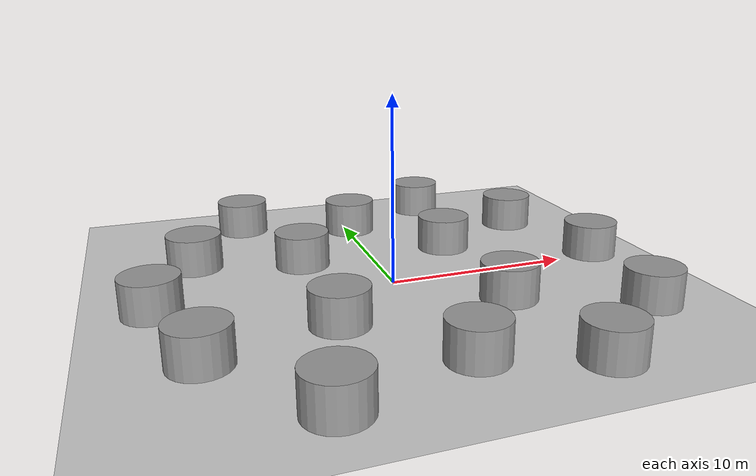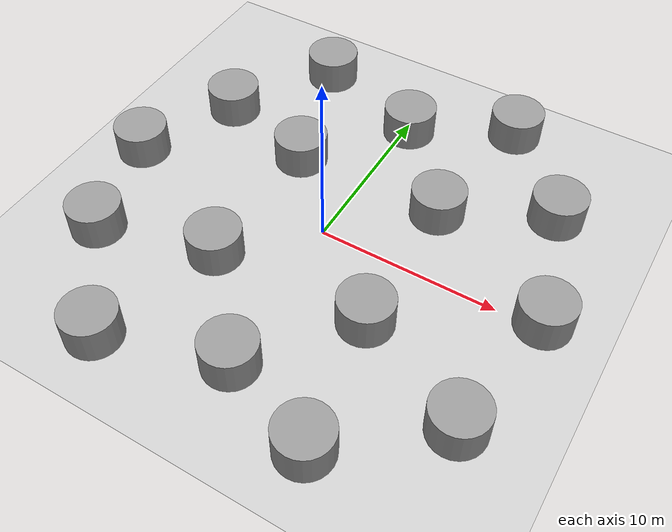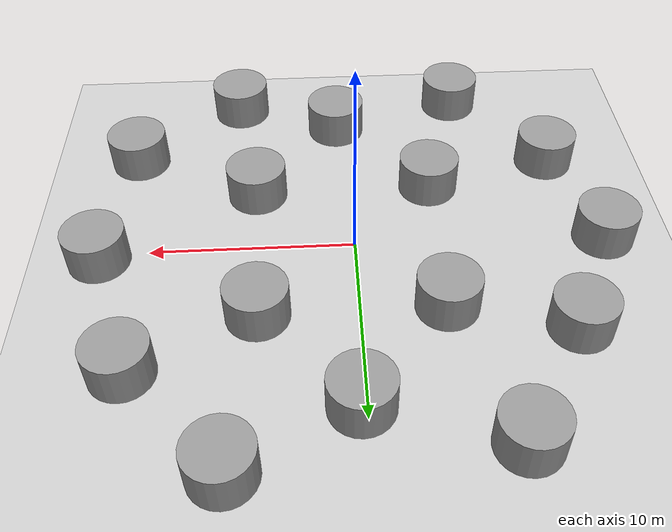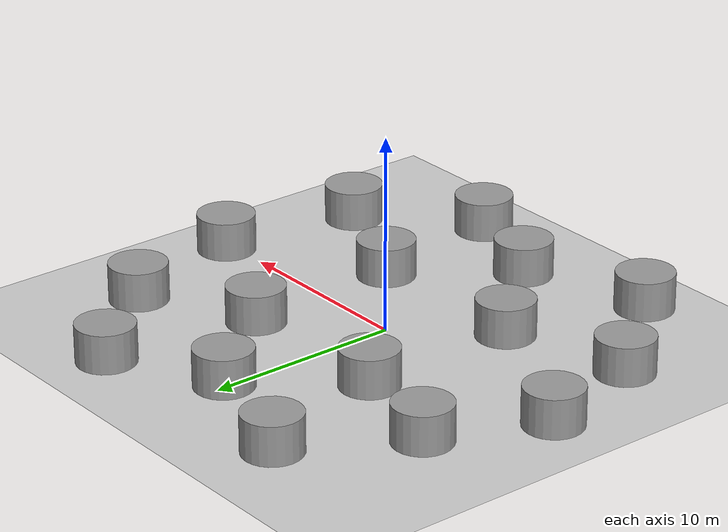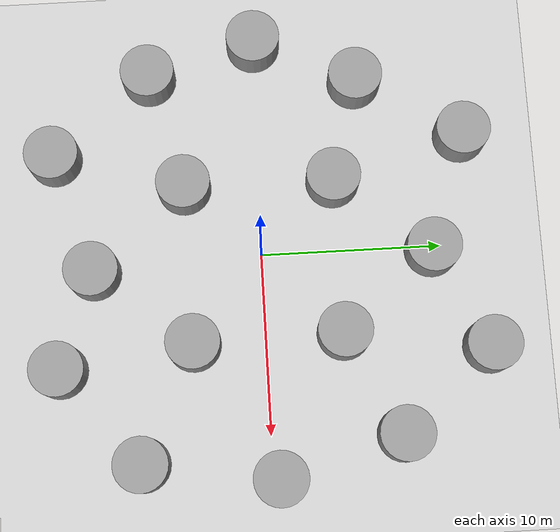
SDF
<sdf version="1.6">
 <world name="default">
  <light name="sun" type="directional">
   <pose>0 0 10 0 -0 0</pose>
   <diffuse>0.8 0.8 0.8 1</diffuse>
   <specular>0 0 0.2 1</specular>
   <attenuation>
    <range>1000</range>
    <constant>0.9</constant>
    <linear>0.01</linear>
    <quadratic>0.001</quadratic>
   </attenuation>
   <direction>-0.5 0.1 -0.9</direction>
  </light>
  <model name="ground_plane">
   <static>1</static>
   <link name="link">
    <collision name="collision">
     <geometry><plane><normal>0 0 1</normal><size>100 100</size></plane></geometry>
     <surface>
      <contact><collide_bitmask>65535</collide_bitmask></contact>
      <friction><ode><mu>100</mu><mu2>50</mu2></ode></friction>
     </surface>
    </collision>
    <visual name="visual">
     <cast_shadows>0</cast_shadows>
     <geometry><plane><normal>0 0 1</normal><size>100 100</size></plane></geometry>
     <material>
      <script><uri>file://media/materials/scripts/gazebo.material</uri><name>Gazebo/Grey</name></script>
     </material>
    </visual>
   </link>
  </model>
  <gravity>0 0 -9.8</gravity>
  <magnetic_field>6e-06 2.3e-05 -4.2e-05</magnetic_field>
  <atmosphere type="adiabatic"/>
  <physics name="default_physics" default="0" type="ode">
   <max_step_size>0.001</max_step_size>
   <real_time_factor>1</real_time_factor>
   <real_time_update_rate>1000</real_time_update_rate>
   <ode>
    <solver>
     <iters>1000</iters>
     <type>quick</type>
     <sor>1.3</sor>
     <use_dynamic_moi_rescaling>0</use_dynamic_moi_rescaling>
    </solver>
    <constraints>
     <cfm>0</cfm>
     <erp>0.2</erp>
     <contact_max_correcting_vel>100</contact_max_correcting_vel>
     <contact_surface_layer>0.001</contact_surface_layer>
    </constraints>
   </ode>
  </physics>
  <scene><ambient>0.4 0.4 0.4 1</ambient><background>0.7 0.7 0.7 1</background><shadows>1</shadows></scene>
  <audio><device>default</device></audio>
  <spherical_coordinates>
   <surface_model>EARTH_WGS84</surface_model>
   <latitude_deg>0</latitude_deg>
   <longitude_deg>0</longitude_deg>
   <elevation>0</elevation>
   <heading_deg>0</heading_deg>
  </spherical_coordinates>
  <model name="Cylinder_tree_5">
   <link name="link_0">
    <inertial>
     <mass>100</mass>
     <inertia><ixx>89.5833</ixx><ixy>0</ixy><ixz>0</ixz><iyy>89.5833</iyy><iyz>0</iyz><izz>112.5</izz></inertia>
    </inertial>
    <visual name="visual">
     <pose>0 0 0.5 0 -0 0</pose>
     <geometry><cylinder><radius>1.5</radius><length>2</length></cylinder></geometry>
     <material>
      <lighting>1</lighting>
      <script><uri>file://media/materials/scripts/gazebo.material</uri><name>Gazebo/Grey</name></script>
      <shader type="vertex"><normal_map>__default__</normal_map></shader>
      <ambient>0.3 0.3 0.3 1</ambient>
      <diffuse>0.7 0.7 0.7 1</diffuse>
      <specular>0.01 0.01 0.01 1</specular>
      <emissive>0 0 0 1</emissive>
     </material>
    </visual>
    <collision name="collision">
     <pose>0 0 0.5 0 -0 0</pose>
     <geometry><cylinder><radius>1.5</radius><length>2</length></cylinder></geometry>
     <surface>
      <friction>
       <ode><mu>1</mu><mu2>1</mu2><fdir1>0 0 0</fdir1><slip1>0</slip1><slip2>0</slip2></ode>
       <torsional>
        <coefficient>1</coefficient>
        <patch_radius>0</patch_radius>
        <surface_radius>0</surface_radius>
        <use_patch_radius>1</use_patch_radius>
        <ode><slip>0</slip></ode>
       </torsional>
      </friction>
      <bounce><restitution_coefficient>0</restitution_coefficient><threshold>1e+06</threshold></bounce>
      <contact>
       <collide_without_contact>0</collide_without_contact>
       <collide_without_contact_bitmask>1</collide_without_contact_bitmask>
       <collide_bitmask>1</collide_bitmask>
       <ode>
        <soft_cfm>0</soft_cfm>
        <soft_erp>0.2</soft_erp>
        <kp>1e+13</kp>
        <kd>1</kd>
        <max_vel>0.01</max_vel>
        <min_depth>0</min_depth>
       </ode>
       <bullet>
        <split_impulse>1</split_impulse>
        <split_impulse_penetration_threshold>-0.01</split_impulse_penetration_threshold>
        <soft_cfm>0</soft_cfm>
        <soft_erp>0.2</soft_erp>
        <kp>1e+13</kp>
        <kd>1</kd>
       </bullet>
      </contact>
     </surface>
    </collision>
   </link>
   <static>1</static>
   <pose>4.63336 4.28712 0.5 3e-06 -0 0</pose>
  </model>
  <model name="Cylinder_tree_6">
   <link name="link_0">
    <inertial>
     <mass>100</mass>
     <inertia><ixx>89.5833</ixx><ixy>0</ixy><ixz>0</ixz><iyy>89.5833</iyy><iyz>0</iyz><izz>112.5</izz></inertia>
    </inertial>
    <visual name="visual">
     <pose>0 0 0.5 0 -0 0</pose>
     <geometry><cylinder><radius>1.5</radius><length>2</length></cylinder></geometry>
     <material>
      <lighting>1</lighting>
      <script><uri>file://media/materials/scripts/gazebo.material</uri><name>Gazebo/Grey</name></script>
      <shader type="vertex"><normal_map>__default__</normal_map></shader>
      <ambient>0.3 0.3 0.3 1</ambient>
      <diffuse>0.7 0.7 0.7 1</diffuse>
      <specular>0.01 0.01 0.01 1</specular>
      <emissive>0 0 0 1</emissive>
     </material>
    </visual>
    <collision name="collision">
     <pose>0 0 0.5 0 -0 0</pose>
     <geometry><cylinder><radius>1.5</radius><length>2</length></cylinder></geometry>
     <surface>
      <friction>
       <ode><mu>1</mu><mu2>1</mu2><fdir1>0 0 0</fdir1><slip1>0</slip1><slip2>0</slip2></ode>
       <torsional>
        <coefficient>1</coefficient>
        <patch_radius>0</patch_radius>
        <surface_radius>0</surface_radius>
        <use_patch_radius>1</use_patch_radius>
        <ode><slip>0</slip></ode>
       </torsional>
      </friction>
      <bounce><restitution_coefficient>0</restitution_coefficient><threshold>1e+06</threshold></bounce>
      <contact>
       <collide_without_contact>0</collide_without_contact>
       <collide_without_contact_bitmask>1</collide_without_contact_bitmask>
       <collide_bitmask>1</collide_bitmask>
       <ode>
        <soft_cfm>0</soft_cfm>
        <soft_erp>0.2</soft_erp>
        <kp>1e+13</kp>
        <kd>1</kd>
        <max_vel>0.01</max_vel>
        <min_depth>0</min_depth>
       </ode>
       <bullet>
        <split_impulse>1</split_impulse>
        <split_impulse_penetration_threshold>-0.01</split_impulse_penetration_threshold>
        <soft_cfm>0</soft_cfm>
        <soft_erp>0.2</soft_erp>
        <kp>1e+13</kp>
        <kd>1</kd>
       </bullet>
      </contact>
     </surface>
    </collision>
   </link>
   <static>1</static>
   <pose>10.3143 7.20695 0.5 3e-06 -0 0</pose>
  </model>
  <model name="Cylinder_tree_7">
   <link name="link_0">
    <inertial>
     <mass>100</mass>
     <inertia><ixx>89.5833</ixx><ixy>0</ixy><ixz>0</ixz><iyy>89.5833</iyy><iyz>0</iyz><izz>112.5</izz></inertia>
    </inertial>
    <visual name="visual">
     <pose>0 0 0.5 0 -0 0</pose>
     <geometry><cylinder><radius>1.5</radius><length>2</length></cylinder></geometry>
     <material>
      <lighting>1</lighting>
      <script><uri>file://media/materials/scripts/gazebo.material</uri><name>Gazebo/Grey</name></script>
      <shader type="vertex"><normal_map>__default__</normal_map></shader>
      <ambient>0.3 0.3 0.3 1</ambient>
      <diffuse>0.7 0.7 0.7 1</diffuse>
      <specular>0.01 0.01 0.01 1</specular>
      <emissive>0 0 0 1</emissive>
     </material>
    </visual>
    <collision name="collision">
     <pose>0 0 0.5 0 -0 0</pose>
     <geometry><cylinder><radius>1.5</radius><length>2</length></cylinder></geometry>
     <surface>
      <friction>
       <ode><mu>1</mu><mu2>1</mu2><fdir1>0 0 0</fdir1><slip1>0</slip1><slip2>0</slip2></ode>
       <torsional>
        <coefficient>1</coefficient>
        <patch_radius>0</patch_radius>
        <surface_radius>0</surface_radius>
        <use_patch_radius>1</use_patch_radius>
        <ode><slip>0</slip></ode>
       </torsional>
      </friction>
      <bounce><restitution_coefficient>0</restitution_coefficient><threshold>1e+06</threshold></bounce>
      <contact>
       <collide_without_contact>0</collide_without_contact>
       <collide_without_contact_bitmask>1</collide_without_contact_bitmask>
       <collide_bitmask>1</collide_bitmask>
       <ode>
        <soft_cfm>0</soft_cfm>
        <soft_erp>0.2</soft_erp>
        <kp>1e+13</kp>
        <kd>1</kd>
        <max_vel>0.01</max_vel>
        <min_depth>0</min_depth>
       </ode>
       <bullet>
        <split_impulse>1</split_impulse>
        <split_impulse_penetration_threshold>-0.01</split_impulse_penetration_threshold>
        <soft_cfm>0</soft_cfm>
        <soft_erp>0.2</soft_erp>
        <kp>1e+13</kp>
        <kd>1</kd>
       </bullet>
      </contact>
     </surface>
    </collision>
   </link>
   <static>1</static>
   <pose>12.3241 0.388519 0.5 3e-06 -0 0</pose>
  </model>
  <model name="Cylinder_tree_8">
   <link name="link_0">
    <inertial>
     <mass>100</mass>
     <inertia><ixx>89.5833</ixx><ixy>0</ixy><ixz>0</ixz><iyy>89.5833</iyy><iyz>0</iyz><izz>112.5</izz></inertia>
    </inertial>
    <visual name="visual">
     <pose>0 0 0.5 0 -0 0</pose>
     <geometry><cylinder><radius>1.5</radius><length>2</length></cylinder></geometry>
     <material>
      <lighting>1</lighting>
      <script><uri>file://media/materials/scripts/gazebo.material</uri><name>Gazebo/Grey</name></script>
      <shader type="vertex"><normal_map>__default__</normal_map></shader>
      <ambient>0.3 0.3 0.3 1</ambient>
      <diffuse>0.7 0.7 0.7 1</diffuse>
      <specular>0.01 0.01 0.01 1</specular>
      <emissive>0 0 0 1</emissive>
     </material>
    </visual>
    <collision name="collision">
     <pose>0 0 0.5 0 -0 0</pose>
     <geometry><cylinder><radius>1.5</radius><length>2</length></cylinder></geometry>
     <surface>
      <friction>
       <ode><mu>1</mu><mu2>1</mu2><fdir1>0 0 0</fdir1><slip1>0</slip1><slip2>0</slip2></ode>
       <torsional>
        <coefficient>1</coefficient>
        <patch_radius>0</patch_radius>
        <surface_radius>0</surface_radius>
        <use_patch_radius>1</use_patch_radius>
        <ode><slip>0</slip></ode>
       </torsional>
      </friction>
      <bounce><restitution_coefficient>0</restitution_coefficient><threshold>1e+06</threshold></bounce>
      <contact>
       <collide_without_contact>0</collide_without_contact>
       <collide_without_contact_bitmask>1</collide_without_contact_bitmask>
       <collide_bitmask>1</collide_bitmask>
       <ode>
        <soft_cfm>0</soft_cfm>
        <soft_erp>0.2</soft_erp>
        <kp>1e+13</kp>
        <kd>1</kd>
        <max_vel>0.01</max_vel>
        <min_depth>0</min_depth>
       </ode>
       <bullet>
        <split_impulse>1</split_impulse>
        <split_impulse_penetration_threshold>-0.01</split_impulse_penetration_threshold>
        <soft_cfm>0</soft_cfm>
        <soft_erp>0.2</soft_erp>
        <kp>1e+13</kp>
        <kd>1</kd>
       </bullet>
      </contact>
     </surface>
    </collision>
   </link>
   <static>1</static>
   <pose>4.82698 -3.95706 0.5 0 -0 0</pose>
  </model>
  <model name="Cylinder_tree_9">
   <link name="link_0">
    <inertial>
     <mass>100</mass>
     <inertia><ixx>89.5833</ixx><ixy>0</ixy><ixz>0</ixz><iyy>89.5833</iyy><iyz>0</iyz><izz>112.5</izz></inertia>
    </inertial>
    <visual name="visual">
     <pose>0 0 0.5 0 -0 0</pose>
     <geometry><cylinder><radius>1.5</radius><length>2</length></cylinder></geometry>
     <material>
      <lighting>1</lighting>
      <script><uri>file://media/materials/scripts/gazebo.material</uri><name>Gazebo/Grey</name></script>
      <shader type="vertex"><normal_map>__default__</normal_map></shader>
      <ambient>0.3 0.3 0.3 1</ambient>
      <diffuse>0.7 0.7 0.7 1</diffuse>
      <specular>0.01 0.01 0.01 1</specular>
      <emissive>0 0 0 1</emissive>
     </material>
    </visual>
    <collision name="collision">
     <pose>0 0 0.5 0 -0 0</pose>
     <geometry><cylinder><radius>1.5</radius><length>2</length></cylinder></geometry>
     <surface>
      <friction>
       <ode><mu>1</mu><mu2>1</mu2><fdir1>0 0 0</fdir1><slip1>0</slip1><slip2>0</slip2></ode>
       <torsional>
        <coefficient>1</coefficient>
        <patch_radius>0</patch_radius>
        <surface_radius>0</surface_radius>
        <use_patch_radius>1</use_patch_radius>
        <ode><slip>0</slip></ode>
       </torsional>
      </friction>
      <bounce><restitution_coefficient>0</restitution_coefficient><threshold>1e+06</threshold></bounce>
      <contact>
       <collide_without_contact>0</collide_without_contact>
       <collide_without_contact_bitmask>1</collide_without_contact_bitmask>
       <collide_bitmask>1</collide_bitmask>
       <ode>
        <soft_cfm>0</soft_cfm>
        <soft_erp>0.2</soft_erp>
        <kp>1e+13</kp>
        <kd>1</kd>
        <max_vel>0.01</max_vel>
        <min_depth>0</min_depth>
       </ode>
       <bullet>
        <split_impulse>1</split_impulse>
        <split_impulse_penetration_threshold>-0.01</split_impulse_penetration_threshold>
        <soft_cfm>0</soft_cfm>
        <soft_erp>0.2</soft_erp>
        <kp>1e+13</kp>
        <kd>1</kd>
       </bullet>
      </contact>
     </surface>
    </collision>
   </link>
   <static>1</static>
   <pose>11.1835 -6.97095 0.5 3e-06 -0 0</pose>
  </model>
  <model name="Cylinder_tree_11">
   <link name="link_0">
    <inertial>
     <mass>100</mass>
     <inertia><ixx>89.5833</ixx><ixy>0</ixy><ixz>0</ixz><iyy>89.5833</iyy><iyz>0</iyz><izz>112.5</izz></inertia>
    </inertial>
    <visual name="visual">
     <pose>0 0 0.5 0 -0 0</pose>
     <geometry><cylinder><radius>1.5</radius><length>2</length></cylinder></geometry>
     <material>
      <lighting>1</lighting>
      <script><uri>file://media/materials/scripts/gazebo.material</uri><name>Gazebo/Grey</name></script>
      <shader type="vertex"><normal_map>__default__</normal_map></shader>
      <ambient>0.3 0.3 0.3 1</ambient>
      <diffuse>0.7 0.7 0.7 1</diffuse>
      <specular>0.01 0.01 0.01 1</specular>
      <emissive>0 0 0 1</emissive>
     </material>
    </visual>
    <collision name="collision">
     <pose>0 0 0.5 0 -0 0</pose>
     <geometry><cylinder><radius>1.5</radius><length>2</length></cylinder></geometry>
     <surface>
      <friction>
       <ode><mu>1</mu><mu2>1</mu2><fdir1>0 0 0</fdir1><slip1>0</slip1><slip2>0</slip2></ode>
       <torsional>
        <coefficient>1</coefficient>
        <patch_radius>0</patch_radius>
        <surface_radius>0</surface_radius>
        <use_patch_radius>1</use_patch_radius>
        <ode><slip>0</slip></ode>
       </torsional>
      </friction>
      <bounce><restitution_coefficient>0</restitution_coefficient><threshold>1e+06</threshold></bounce>
      <contact>
       <collide_without_contact>0</collide_without_contact>
       <collide_without_contact_bitmask>1</collide_without_contact_bitmask>
       <collide_bitmask>1</collide_bitmask>
       <ode>
        <soft_cfm>0</soft_cfm>
        <soft_erp>0.2</soft_erp>
        <kp>1e+13</kp>
        <kd>1</kd>
        <max_vel>0.01</max_vel>
        <min_depth>0</min_depth>
       </ode>
       <bullet>
        <split_impulse>1</split_impulse>
        <split_impulse_penetration_threshold>-0.01</split_impulse_penetration_threshold>
        <soft_cfm>0</soft_cfm>
        <soft_erp>0.2</soft_erp>
        <kp>1e+13</kp>
        <kd>1</kd>
       </bullet>
      </contact>
     </surface>
    </collision>
   </link>
   <static>1</static>
   <pose>-9.71709 5.76638 0.5 3e-06 -0 0</pose>
  </model>
  <model name="Cylinder_tree_12">
   <link name="link_0">
    <inertial>
     <mass>100</mass>
     <inertia><ixx>89.5833</ixx><ixy>0</ixy><ixz>0</ixz><iyy>89.5833</iyy><iyz>0</iyz><izz>112.5</izz></inertia>
    </inertial>
    <visual name="visual">
     <pose>0 0 0.5 0 -0 0</pose>
     <geometry><cylinder><radius>1.5</radius><length>2</length></cylinder></geometry>
     <material>
      <lighting>1</lighting>
      <script><uri>file://media/materials/scripts/gazebo.material</uri><name>Gazebo/Grey</name></script>
      <shader type="vertex"><normal_map>__default__</normal_map></shader>
      <ambient>0.3 0.3 0.3 1</ambient>
      <diffuse>0.7 0.7 0.7 1</diffuse>
      <specular>0.01 0.01 0.01 1</specular>
      <emissive>0 0 0 1</emissive>
     </material>
    </visual>
    <collision name="collision">
     <pose>0 0 0.5 0 -0 0</pose>
     <geometry><cylinder><radius>1.5</radius><length>2</length></cylinder></geometry>
     <surface>
      <friction>
       <ode><mu>1</mu><mu2>1</mu2><fdir1>0 0 0</fdir1><slip1>0</slip1><slip2>0</slip2></ode>
       <torsional>
        <coefficient>1</coefficient>
        <patch_radius>0</patch_radius>
        <surface_radius>0</surface_radius>
        <use_patch_radius>1</use_patch_radius>
        <ode><slip>0</slip></ode>
       </torsional>
      </friction>
      <bounce><restitution_coefficient>0</restitution_coefficient><threshold>1e+06</threshold></bounce>
      <contact>
       <collide_without_contact>0</collide_without_contact>
       <collide_without_contact_bitmask>1</collide_without_contact_bitmask>
       <collide_bitmask>1</collide_bitmask>
       <ode>
        <soft_cfm>0</soft_cfm>
        <soft_erp>0.2</soft_erp>
        <kp>1e+13</kp>
        <kd>1</kd>
        <max_vel>0.01</max_vel>
        <min_depth>0</min_depth>
       </ode>
       <bullet>
        <split_impulse>1</split_impulse>
        <split_impulse_penetration_threshold>-0.01</split_impulse_penetration_threshold>
        <soft_cfm>0</soft_cfm>
        <soft_erp>0.2</soft_erp>
        <kp>1e+13</kp>
        <kd>1</kd>
       </bullet>
      </contact>
     </surface>
    </collision>
   </link>
   <static>1</static>
   <pose>-10.5057 -5.85723 0.5 0 -0 0</pose>
  </model>
  <model name="Cylinder_tree_13">
   <link name="link_0">
    <inertial>
     <mass>100</mass>
     <inertia><ixx>89.5833</ixx><ixy>0</ixy><ixz>0</ixz><iyy>89.5833</iyy><iyz>0</iyz><izz>112.5</izz></inertia>
    </inertial>
    <visual name="visual">
     <pose>0 0 0.5 0 -0 0</pose>
     <geometry><cylinder><radius>1.5</radius><length>2</length></cylinder></geometry>
     <material>
      <lighting>1</lighting>
      <script><uri>file://media/materials/scripts/gazebo.material</uri><name>Gazebo/Grey</name></script>
      <shader type="vertex"><normal_map>__default__</normal_map></shader>
      <ambient>0.3 0.3 0.3 1</ambient>
      <diffuse>0.7 0.7 0.7 1</diffuse>
      <specular>0.01 0.01 0.01 1</specular>
      <emissive>0 0 0 1</emissive>
     </material>
    </visual>
    <collision name="collision">
     <pose>0 0 0.5 0 -0 0</pose>
     <geometry><cylinder><radius>1.5</radius><length>2</length></cylinder></geometry>
     <surface>
      <friction>
       <ode><mu>1</mu><mu2>1</mu2><fdir1>0 0 0</fdir1><slip1>0</slip1><slip2>0</slip2></ode>
       <torsional>
        <coefficient>1</coefficient>
        <patch_radius>0</patch_radius>
        <surface_radius>0</surface_radius>
        <use_patch_radius>1</use_patch_radius>
        <ode><slip>0</slip></ode>
       </torsional>
      </friction>
      <bounce><restitution_coefficient>0</restitution_coefficient><threshold>1e+06</threshold></bounce>
      <contact>
       <collide_without_contact>0</collide_without_contact>
       <collide_without_contact_bitmask>1</collide_without_contact_bitmask>
       <collide_bitmask>1</collide_bitmask>
       <ode>
        <soft_cfm>0</soft_cfm>
        <soft_erp>0.2</soft_erp>
        <kp>1e+13</kp>
        <kd>1</kd>
        <max_vel>0.01</max_vel>
        <min_depth>0</min_depth>
       </ode>
       <bullet>
        <split_impulse>1</split_impulse>
        <split_impulse_penetration_threshold>-0.01</split_impulse_penetration_threshold>
        <soft_cfm>0</soft_cfm>
        <soft_erp>0.2</soft_erp>
        <kp>1e+13</kp>
        <kd>1</kd>
       </bullet>
      </contact>
     </surface>
    </collision>
   </link>
   <static>1</static>
   <pose>-12.2168 0.150688 0.5 0 -0 0</pose>
  </model>
  <model name="Cylinder_tree_14">
   <link name="link_0">
    <inertial>
     <mass>100</mass>
     <inertia><ixx>89.5833</ixx><ixy>0</ixy><ixz>0</ixz><iyy>89.5833</iyy><iyz>0</iyz><izz>112.5</izz></inertia>
    </inertial>
    <visual name="visual">
     <pose>0 0 0.5 0 -0 0</pose>
     <geometry><cylinder><radius>1.5</radius><length>2</length></cylinder></geometry>
     <material>
      <lighting>1</lighting>
      <script><uri>file://media/materials/scripts/gazebo.material</uri><name>Gazebo/Grey</name></script>
      <shader type="vertex"><normal_map>__default__</normal_map></shader>
      <ambient>0.3 0.3 0.3 1</ambient>
      <diffuse>0.7 0.7 0.7 1</diffuse>
      <specular>0.01 0.01 0.01 1</specular>
      <emissive>0 0 0 1</emissive>
     </material>
    </visual>
    <collision name="collision">
     <pose>0 0 0.5 0 -0 0</pose>
     <geometry><cylinder><radius>1.5</radius><length>2</length></cylinder></geometry>
     <surface>
      <friction>
       <ode><mu>1</mu><mu2>1</mu2><fdir1>0 0 0</fdir1><slip1>0</slip1><slip2>0</slip2></ode>
       <torsional>
        <coefficient>1</coefficient>
        <patch_radius>0</patch_radius>
        <surface_radius>0</surface_radius>
        <use_patch_radius>1</use_patch_radius>
        <ode><slip>0</slip></ode>
       </torsional>
      </friction>
      <bounce><restitution_coefficient>0</restitution_coefficient><threshold>1e+06</threshold></bounce>
      <contact>
       <collide_without_contact>0</collide_without_contact>
       <collide_without_contact_bitmask>1</collide_without_contact_bitmask>
       <collide_bitmask>1</collide_bitmask>
       <ode>
        <soft_cfm>0</soft_cfm>
        <soft_erp>0.2</soft_erp>
        <kp>1e+13</kp>
        <kd>1</kd>
        <max_vel>0.01</max_vel>
        <min_depth>0</min_depth>
       </ode>
       <bullet>
        <split_impulse>1</split_impulse>
        <split_impulse_penetration_threshold>-0.01</split_impulse_penetration_threshold>
        <soft_cfm>0</soft_cfm>
        <soft_erp>0.2</soft_erp>
        <kp>1e+13</kp>
        <kd>1</kd>
       </bullet>
      </contact>
     </surface>
    </collision>
   </link>
   <static>1</static>
   <pose>0.573762 -9.31292 0.5 3e-06 -0 0</pose>
  </model>
  <model name="Cylinder_tree_16">
   <link name="link_0">
    <inertial>
     <mass>100</mass>
     <inertia><ixx>89.5833</ixx><ixy>0</ixy><ixz>0</ixz><iyy>89.5833</iyy><iyz>0</iyz><izz>112.5</izz></inertia>
    </inertial>
    <visual name="visual">
     <pose>0 0 0.5 0 -0 0</pose>
     <geometry><cylinder><radius>1.5</radius><length>2</length></cylinder></geometry>
     <material>
      <lighting>1</lighting>
      <script><uri>file://media/materials/scripts/gazebo.material</uri><name>Gazebo/Grey</name></script>
      <shader type="vertex"><normal_map>__default__</normal_map></shader>
      <ambient>0.3 0.3 0.3 1</ambient>
      <diffuse>0.7 0.7 0.7 1</diffuse>
      <specular>0.01 0.01 0.01 1</specular>
      <emissive>0 0 0 1</emissive>
     </material>
    </visual>
    <collision name="collision">
     <pose>0 0 0.5 0 -0 0</pose>
     <geometry><cylinder><radius>1.5</radius><length>2</length></cylinder></geometry>
     <surface>
      <friction>
       <ode><mu>1</mu><mu2>1</mu2><fdir1>0 0 0</fdir1><slip1>0</slip1><slip2>0</slip2></ode>
       <torsional>
        <coefficient>1</coefficient>
        <patch_radius>0</patch_radius>
        <surface_radius>0</surface_radius>
        <use_patch_radius>1</use_patch_radius>
        <ode><slip>0</slip></ode>
       </torsional>
      </friction>
      <bounce><restitution_coefficient>0</restitution_coefficient><threshold>1e+06</threshold></bounce>
      <contact>
       <collide_without_contact>0</collide_without_contact>
       <collide_without_contact_bitmask>1</collide_without_contact_bitmask>
       <collide_bitmask>1</collide_bitmask>
       <ode>
        <soft_cfm>0</soft_cfm>
        <soft_erp>0.2</soft_erp>
        <kp>1e+13</kp>
        <kd>1</kd>
        <max_vel>0.01</max_vel>
        <min_depth>0</min_depth>
       </ode>
       <bullet>
        <split_impulse>1</split_impulse>
        <split_impulse_penetration_threshold>-0.01</split_impulse_penetration_threshold>
        <soft_cfm>0</soft_cfm>
        <soft_erp>0.2</soft_erp>
        <kp>1e+13</kp>
        <kd>1</kd>
       </bullet>
      </contact>
     </surface>
    </collision>
   </link>
   <static>1</static>
   <pose>0.251652 9.44045 0.5 3e-06 -0 0</pose>
  </model>
  <model name="Cylinder_tree_1">
   <link name="link_0">
    <inertial>
     <mass>100</mass>
     <inertia><ixx>89.5833</ixx><ixy>0</ixy><ixz>0</ixz><iyy>89.5833</iyy><iyz>0</iyz><izz>112.5</izz></inertia>
    </inertial>
    <visual name="visual">
     <pose>0 0 0.5 0 -0 0</pose>
     <geometry><cylinder><radius>1.5</radius><length>2</length></cylinder></geometry>
     <material>
      <lighting>1</lighting>
      <script><uri>file://media/materials/scripts/gazebo.material</uri><name>Gazebo/Grey</name></script>
      <shader type="vertex"><normal_map>__default__</normal_map></shader>
      <ambient>0.3 0.3 0.3 1</ambient>
      <diffuse>0.7 0.7 0.7 1</diffuse>
      <specular>0.01 0.01 0.01 1</specular>
      <emissive>0 0 0 1</emissive>
     </material>
    </visual>
    <collision name="collision">
     <pose>0 0 0.5 0 -0 0</pose>
     <geometry><cylinder><radius>1.5</radius><length>2</length></cylinder></geometry>
     <surface>
      <friction>
       <ode><mu>1</mu><mu2>1</mu2><fdir1>0 0 0</fdir1><slip1>0</slip1><slip2>0</slip2></ode>
       <torsional>
        <coefficient>1</coefficient>
        <patch_radius>0</patch_radius>
        <surface_radius>0</surface_radius>
        <use_patch_radius>1</use_patch_radius>
        <ode><slip>0</slip></ode>
       </torsional>
      </friction>
      <bounce><restitution_coefficient>0</restitution_coefficient><threshold>1e+06</threshold></bounce>
      <contact>
       <collide_without_contact>0</collide_without_contact>
       <collide_without_contact_bitmask>1</collide_without_contact_bitmask>
       <collide_bitmask>1</collide_bitmask>
       <ode>
        <soft_cfm>0</soft_cfm>
        <soft_erp>0.2</soft_erp>
        <kp>1e+13</kp>
        <kd>1</kd>
        <max_vel>0.01</max_vel>
        <min_depth>0</min_depth>
       </ode>
       <bullet>
        <split_impulse>1</split_impulse>
        <split_impulse_penetration_threshold>-0.01</split_impulse_penetration_threshold>
        <soft_cfm>0</soft_cfm>
        <soft_erp>0.2</soft_erp>
        <kp>1e+13</kp>
        <kd>1</kd>
       </bullet>
      </contact>
     </surface>
    </collision>
   </link>
   <static>1</static>
   <pose>-6.06045 -11.3284 0.5 3e-06 -0 0</pose>
  </model>
  <model name="Cylinder_tree_3">
   <link name="link_0">
    <inertial>
     <mass>100</mass>
     <inertia><ixx>89.5833</ixx><ixy>0</ixy><ixz>0</ixz><iyy>89.5833</iyy><iyz>0</iyz><izz>112.5</izz></inertia>
    </inertial>
    <visual name="visual">
     <pose>0 0 0.5 0 -0 0</pose>
     <geometry><cylinder><radius>1.5</radius><length>2</length></cylinder></geometry>
     <material>
      <lighting>1</lighting>
      <script><uri>file://media/materials/scripts/gazebo.material</uri><name>Gazebo/Grey</name></script>
      <shader type="vertex"><normal_map>__default__</normal_map></shader>
      <ambient>0.3 0.3 0.3 1</ambient>
      <diffuse>0.7 0.7 0.7 1</diffuse>
      <specular>0.01 0.01 0.01 1</specular>
      <emissive>0 0 0 1</emissive>
     </material>
    </visual>
    <collision name="collision">
     <pose>0 0 0.5 0 -0 0</pose>
     <geometry><cylinder><radius>1.5</radius><length>2</length></cylinder></geometry>
     <surface>
      <friction>
       <ode><mu>1</mu><mu2>1</mu2><fdir1>0 0 0</fdir1><slip1>0</slip1><slip2>0</slip2></ode>
       <torsional>
        <coefficient>1</coefficient>
        <patch_radius>0</patch_radius>
        <surface_radius>0</surface_radius>
        <use_patch_radius>1</use_patch_radius>
        <ode><slip>0</slip></ode>
       </torsional>
      </friction>
      <bounce><restitution_coefficient>0</restitution_coefficient><threshold>1e+06</threshold></bounce>
      <contact>
       <collide_without_contact>0</collide_without_contact>
       <collide_without_contact_bitmask>1</collide_without_contact_bitmask>
       <collide_bitmask>1</collide_bitmask>
       <ode>
        <soft_cfm>0</soft_cfm>
        <soft_erp>0.2</soft_erp>
        <kp>1e+13</kp>
        <kd>1</kd>
        <max_vel>0.01</max_vel>
        <min_depth>0</min_depth>
       </ode>
       <bullet>
        <split_impulse>1</split_impulse>
        <split_impulse_penetration_threshold>-0.01</split_impulse_penetration_threshold>
        <soft_cfm>0</soft_cfm>
        <soft_erp>0.2</soft_erp>
        <kp>1e+13</kp>
        <kd>1</kd>
       </bullet>
      </contact>
     </surface>
    </collision>
   </link>
   <static>1</static>
   <pose>5.78037 12.2437 0.5 3e-06 -0 0</pose>
  </model>
  <model name="Cylinder_tree_10">
   <link name="link_0">
    <inertial>
     <mass>100</mass>
     <inertia><ixx>89.5833</ixx><ixy>0</ixy><ixz>0</ixz><iyy>89.5833</iyy><iyz>0</iyz><izz>112.5</izz></inertia>
    </inertial>
    <visual name="visual">
     <pose>0 0 0.5 0 -0 0</pose>
     <geometry><cylinder><radius>1.5</radius><length>2</length></cylinder></geometry>
     <material>
      <lighting>1</lighting>
      <script><uri>file://media/materials/scripts/gazebo.material</uri><name>Gazebo/Grey</name></script>
      <shader type="vertex"><normal_map>__default__</normal_map></shader>
      <ambient>0.3 0.3 0.3 1</ambient>
      <diffuse>0.7 0.7 0.7 1</diffuse>
      <specular>0.01 0.01 0.01 1</specular>
      <emissive>0 0 0 1</emissive>
     </material>
    </visual>
    <collision name="collision">
     <pose>0 0 0.5 0 -0 0</pose>
     <geometry><cylinder><radius>1.5</radius><length>2</length></cylinder></geometry>
     <surface>
      <friction>
       <ode><mu>1</mu><mu2>1</mu2><fdir1>0 0 0</fdir1><slip1>0</slip1><slip2>0</slip2></ode>
       <torsional>
        <coefficient>1</coefficient>
        <patch_radius>0</patch_radius>
        <surface_radius>0</surface_radius>
        <use_patch_radius>1</use_patch_radius>
        <ode><slip>0</slip></ode>
       </torsional>
      </friction>
      <bounce><restitution_coefficient>0</restitution_coefficient><threshold>1e+06</threshold></bounce>
      <contact>
       <collide_without_contact>0</collide_without_contact>
       <collide_without_contact_bitmask>1</collide_without_contact_bitmask>
       <collide_bitmask>1</collide_bitmask>
       <ode>
        <soft_cfm>0</soft_cfm>
        <soft_erp>0.2</soft_erp>
        <kp>1e+13</kp>
        <kd>1</kd>
        <max_vel>0.01</max_vel>
        <min_depth>0</min_depth>
       </ode>
       <bullet>
        <split_impulse>1</split_impulse>
        <split_impulse_penetration_threshold>-0.01</split_impulse_penetration_threshold>
        <soft_cfm>0</soft_cfm>
        <soft_erp>0.2</soft_erp>
        <kp>1e+13</kp>
        <kd>1</kd>
       </bullet>
      </contact>
     </surface>
    </collision>
   </link>
   <static>1</static>
   <pose>5.90533 -11.298 0.5 3e-06 -0 0</pose>
  </model>
  <model name="Cylinder_tree_15">
   <link name="link_0">
    <inertial>
     <mass>100</mass>
     <inertia><ixx>89.5833</ixx><ixy>0</ixy><ixz>0</ixz><iyy>89.5833</iyy><iyz>0</iyz><izz>112.5</izz></inertia>
    </inertial>
    <visual name="visual">
     <pose>0 0 0.5 0 -0 0</pose>
     <geometry><cylinder><radius>1.5</radius><length>2</length></cylinder></geometry>
     <material>
      <lighting>1</lighting>
      <script><uri>file://media/materials/scripts/gazebo.material</uri><name>Gazebo/Grey</name></script>
      <shader type="vertex"><normal_map>__default__</normal_map></shader>
      <ambient>0.3 0.3 0.3 1</ambient>
      <diffuse>0.7 0.7 0.7 1</diffuse>
      <specular>0.01 0.01 0.01 1</specular>
      <emissive>0 0 0 1</emissive>
     </material>
    </visual>
    <collision name="collision">
     <pose>0 0 0.5 0 -0 0</pose>
     <geometry><cylinder><radius>1.5</radius><length>2</length></cylinder></geometry>
     <surface>
      <friction>
       <ode><mu>1</mu><mu2>1</mu2><fdir1>0 0 0</fdir1><slip1>0</slip1><slip2>0</slip2></ode>
       <torsional>
        <coefficient>1</coefficient>
        <patch_radius>0</patch_radius>
        <surface_radius>0</surface_radius>
        <use_patch_radius>1</use_patch_radius>
        <ode><slip>0</slip></ode>
       </torsional>
      </friction>
      <bounce><restitution_coefficient>0</restitution_coefficient><threshold>1e+06</threshold></bounce>
      <contact>
       <collide_without_contact>0</collide_without_contact>
       <collide_without_contact_bitmask>1</collide_without_contact_bitmask>
       <collide_bitmask>1</collide_bitmask>
       <ode>
        <soft_cfm>0</soft_cfm>
        <soft_erp>0.2</soft_erp>
        <kp>1e+13</kp>
        <kd>1</kd>
        <max_vel>0.01</max_vel>
        <min_depth>0</min_depth>
       </ode>
       <bullet>
        <split_impulse>1</split_impulse>
        <split_impulse_penetration_threshold>-0.01</split_impulse_penetration_threshold>
        <soft_cfm>0</soft_cfm>
        <soft_erp>0.2</soft_erp>
        <kp>1e+13</kp>
        <kd>1</kd>
       </bullet>
      </contact>
     </surface>
    </collision>
   </link>
   <static>1</static>
   <pose>-6.23586 11.5481 0.5 3e-06 -0 0</pose>
  </model>
  <model name="Cylinder_tree_2">
   <link name="link_0">
    <inertial>
     <mass>100</mass>
     <inertia><ixx>89.5833</ixx><ixy>0</ixy><ixz>0</ixz><iyy>89.5833</iyy><iyz>0</iyz><izz>112.5</izz></inertia>
    </inertial>
    <visual name="visual">
     <pose>0 0 0.5 0 -0 0</pose>
     <geometry><cylinder><radius>1.5</radius><length>2</length></cylinder></geometry>
     <material>
      <lighting>1</lighting>
      <script><uri>file://media/materials/scripts/gazebo.material</uri><name>Gazebo/Grey</name></script>
      <shader type="vertex"><normal_map>__default__</normal_map></shader>
      <ambient>0.3 0.3 0.3 1</ambient>
      <diffuse>0.7 0.7 0.7 1</diffuse>
      <specular>0.01 0.01 0.01 1</specular>
      <emissive>0 0 0 1</emissive>
     </material>
    </visual>
    <collision name="collision">
     <pose>0 0 0.5 0 -0 0</pose>
     <geometry><cylinder><radius>1.5</radius><length>2</length></cylinder></geometry>
     <surface>
      <friction>
       <ode><mu>1</mu><mu2>1</mu2><fdir1>0 0 0</fdir1><slip1>0</slip1><slip2>0</slip2></ode>
       <torsional>
        <coefficient>1</coefficient>
        <patch_radius>0</patch_radius>
        <surface_radius>0</surface_radius>
        <use_patch_radius>1</use_patch_radius>
        <ode><slip>0</slip></ode>
       </torsional>
      </friction>
      <bounce><restitution_coefficient>0</restitution_coefficient><threshold>1e+06</threshold></bounce>
      <contact>
       <collide_without_contact>0</collide_without_contact>
       <collide_without_contact_bitmask>1</collide_without_contact_bitmask>
       <collide_bitmask>1</collide_bitmask>
       <ode>
        <soft_cfm>0</soft_cfm>
        <soft_erp>0.2</soft_erp>
        <kp>1e+13</kp>
        <kd>1</kd>
        <max_vel>0.01</max_vel>
        <min_depth>0</min_depth>
       </ode>
       <bullet>
        <split_impulse>1</split_impulse>
        <split_impulse_penetration_threshold>-0.01</split_impulse_penetration_threshold>
        <soft_cfm>0</soft_cfm>
        <soft_erp>0.2</soft_erp>
        <kp>1e+13</kp>
        <kd>1</kd>
       </bullet>
      </contact>
     </surface>
    </collision>
   </link>
   <static>1</static>
   <pose>-3.97983 4.19362 0.5 3e-06 -0 0</pose>
  </model>
  <model name="Cylinder_tree_4">
   <link name="link_0">
    <inertial>
     <mass>100</mass>
     <inertia><ixx>89.5833</ixx><ixy>0</ixy><ixz>0</ixz><iyy>89.5833</iyy><iyz>0</iyz><izz>112.5</izz></inertia>
    </inertial>
    <visual name="visual">
     <pose>0 0 0.5 0 -0 0</pose>
     <geometry><cylinder><radius>1.5</radius><length>2</length></cylinder></geometry>
     <material>
      <lighting>1</lighting>
      <script><uri>file://media/materials/scripts/gazebo.material</uri><name>Gazebo/Grey</name></script>
      <shader type="vertex"><normal_map>__default__</normal_map></shader>
      <ambient>0.3 0.3 0.3 1</ambient>
      <diffuse>0.7 0.7 0.7 1</diffuse>
      <specular>0.01 0.01 0.01 1</specular>
      <emissive>0 0 0 1</emissive>
     </material>
    </visual>
    <collision name="collision">
     <pose>0 0 0.5 0 -0 0</pose>
     <geometry><cylinder><radius>1.5</radius><length>2</length></cylinder></geometry>
     <surface>
      <friction>
       <ode><mu>1</mu><mu2>1</mu2><fdir1>0 0 0</fdir1><slip1>0</slip1><slip2>0</slip2></ode>
       <torsional>
        <coefficient>1</coefficient>
        <patch_radius>0</patch_radius>
        <surface_radius>0</surface_radius>
        <use_patch_radius>1</use_patch_radius>
        <ode><slip>0</slip></ode>
       </torsional>
      </friction>
      <bounce><restitution_coefficient>0</restitution_coefficient><threshold>1e+06</threshold></bounce>
      <contact>
       <collide_without_contact>0</collide_without_contact>
       <collide_without_contact_bitmask>1</collide_without_contact_bitmask>
       <collide_bitmask>1</collide_bitmask>
       <ode>
        <soft_cfm>0</soft_cfm>
        <soft_erp>0.2</soft_erp>
        <kp>1e+13</kp>
        <kd>1</kd>
        <max_vel>0.01</max_vel>
        <min_depth>0</min_depth>
       </ode>
       <bullet>
        <split_impulse>1</split_impulse>
        <split_impulse_penetration_threshold>-0.01</split_impulse_penetration_threshold>
        <soft_cfm>0</soft_cfm>
        <soft_erp>0.2</soft_erp>
        <kp>1e+13</kp>
        <kd>1</kd>
       </bullet>
      </contact>
     </surface>
    </collision>
   </link>
   <static>1</static>
   <pose>-4.02444 -4.11968 0.5 0 -0 0</pose>
  </model>
 </world>
</sdf>
